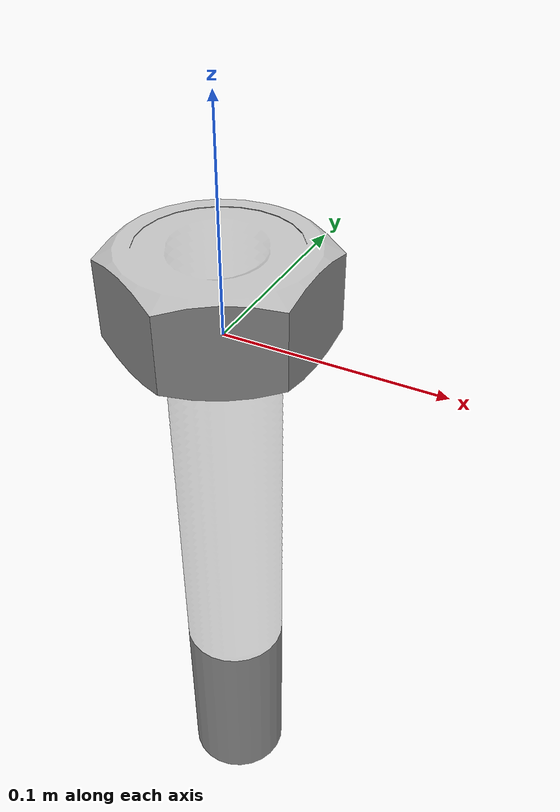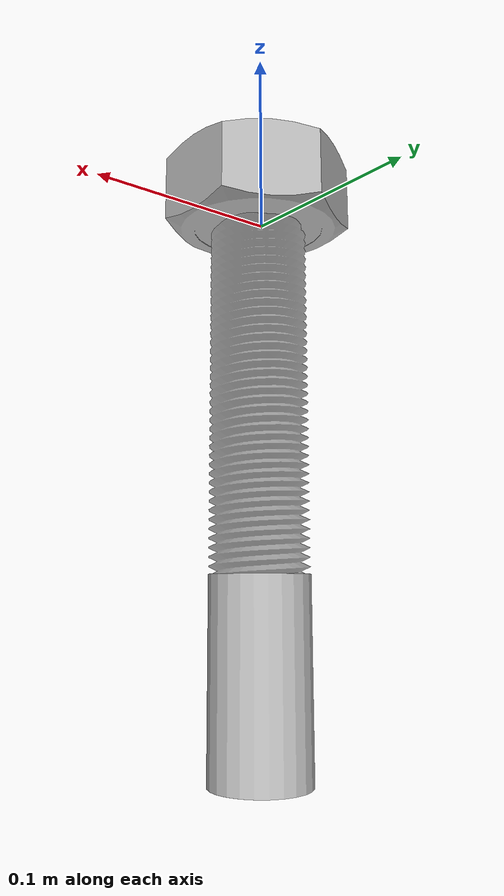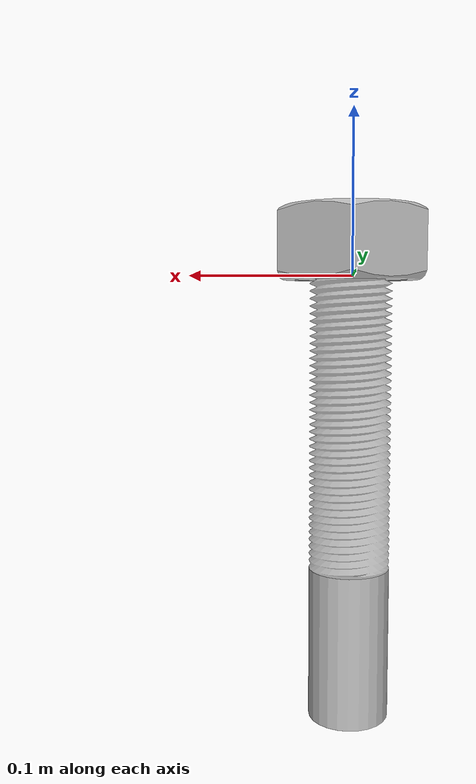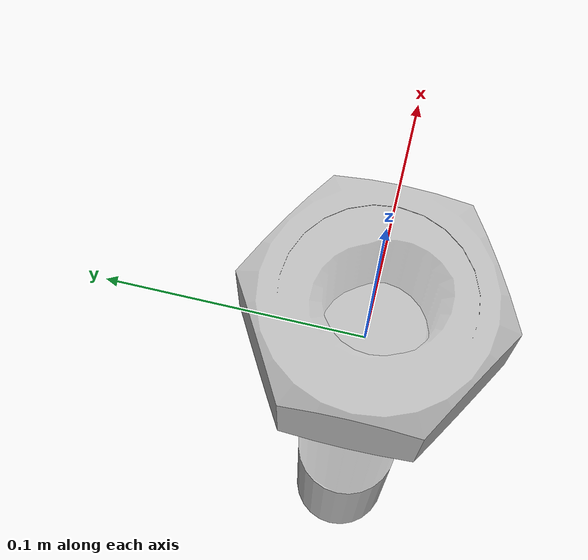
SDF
<?xml version='1.0'?>
<sdf version='1.7'>
  <model name='nut_and_bolt'>
    <link name='bolt'>
      <pose>0.0 0.0 0.0 0.0 0.0 0.0</pose>
      <visual name='bolt_vis'>
        <pose>0 0 0 0 0 0</pose>
        <geometry>
          <mesh>
            <uri>./bolt.obj</uri>
            <scale>0.1 0.1 0.1</scale>
          </mesh>
        </geometry>
      </visual>
      <collision name='bolt_collision'>
        <pose>0 0 0 0 0 0</pose>
        <geometry>
          <mesh>
            <uri>./bolt.obj</uri>
            <scale>0.1 0.1 0.1</scale>
          </mesh>
        </geometry>
      </collision>
      <inertial>
        <pose>0 0 0 0 0 0</pose>
        <mass>1.3</mass>
        <inertia>
          <ixx>1.1e-2</ixx>
          <ixy>0</ixy>
          <ixz>0</ixz>
          <iyy>1.1e-2</iyy>
          <iyz>0</iyz>
          <izz>1.1e-2</izz>
        </inertia>
      </inertial>
    </link>
    <link name='nut'>
      <pose>0.0 0.0 0.0 0.0 0.0 0.0</pose>
      <visual name='nut_vis'>
        <pose>0.0 0.0 0.0 0.0 0.0 0.0</pose>
        <geometry>
          <mesh>
            <uri>./nut.obj</uri>
            <scale>0.1 0.1 0.1</scale>
          </mesh>
        </geometry>
      </visual>
      <collision name='nut_collision'>
        <pose>0 0 0 0 0 0</pose>
        <geometry>
          <mesh>
            <uri>./nut.obj</uri>
            <scale>0.1 0.1 0.1</scale>
          </mesh>
        </geometry>
      </collision>
      <inertial>
        <pose>0 0 0 0 0 0</pose>
        <mass>0.3</mass>
        <inertia>
          <ixx>1.1e-2</ixx>
          <ixy>0</ixy>
          <ixz>0</ixz>
          <iyy>1.1e-2</iyy>
          <iyz>0</iyz>
          <izz>1.1e-2</izz>
        </inertia>
      </inertial>
    </link>
    <joint name='nut_to_bolt_link' type='screw'>
      <parent>bolt</parent>
      <child>nut</child>
      <screw_thread_pitch>0.08</screw_thread_pitch>
      <pose>0 0 0 0 0 0</pose>
      <axis>
        <xyz>0 0 1</xyz>
        <dynamics>
          <damping>0.5</damping>
        </dynamics>
      </axis>
    </joint>
  </model>
</sdf>
